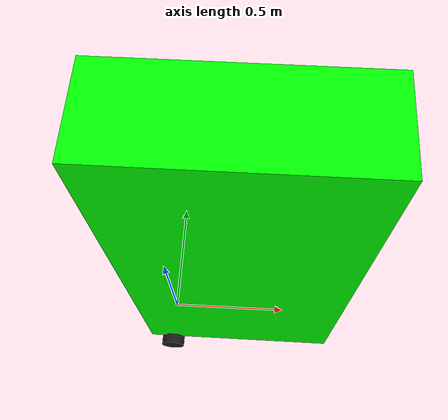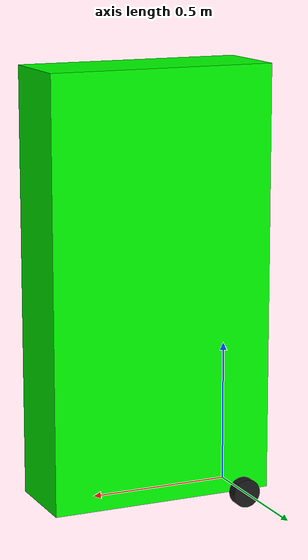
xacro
<?xml version="1.0"?>
<robot name="goal_marker" xmlns:xacro="http://www.ros.org/wiki/xacro">

  <!-- inertias -->
  <xacro:include filename="inertial_macros.xacro"/>

  <!-- NOTE: do NOT declare pkg_uri here; it is passed in from launch via xacro.process_file(mappings=...) -->

  <!-- Root -->
  <link name="base_link"/>

  <!-- Chassis -->
  <link name="chassis">
    <visual name="chassis_visual">
      <origin xyz="0.4 0 0.75"/>
      <geometry><box size="0.8 0.3 1.5"/></geometry>
      <!-- simple fallback color; Gazebo script applies actual texture -->
      <material name="fallback_green"><color rgba="0 1 0 1"/></material>
    </visual>

    <collision>
      <origin xyz="0.4 0 0.75"/>
      <geometry><box size="0.8 0.3 1.5"/></geometry>
    </collision>

    <xacro:inertial_box mass="0.5" x="0.8" y="0.3" z="1.5">
      <origin xyz="0.4 0 0.75" rpy="0 0 0"/>
    </xacro:inertial_box>
  </link>

  <!-- Wheels -->
  <link name="left_wheel">
    <visual>
      <geometry><cylinder length="0.04" radius="0.05"/></geometry>
      <material name="black_left"><color rgba="0.1 0.1 0.1 1"/></material>
    </visual>
    <collision><geometry><cylinder length="0.04" radius="0.05"/></geometry></collision>
    <xacro:inertial_cylinder mass="0.1" length="0.04" radius="0.05">
      <origin xyz="0 0 0" rpy="0 0 0"/>
    </xacro:inertial_cylinder>
  </link>

  <link name="right_wheel">
    <visual>
      <geometry><cylinder length="0.04" radius="0.05"/></geometry>
      <material name="black_right"><color rgba="0.1 0.1 0.1 1"/></material>
    </visual>
    <collision><geometry><cylinder length="0.04" radius="0.05"/></geometry></collision>
    <xacro:inertial_cylinder mass="0.1" length="0.04" radius="0.05">
      <origin xyz="0 0 0" rpy="0 0 0"/>
    </xacro:inertial_cylinder>
  </link>

  <link name="front_caster">
    <visual><geometry><sphere radius="0.05"/></geometry></visual>
    <collision><geometry><sphere radius="0.05"/></geometry></collision>
    <xacro:inertial_sphere mass="0.1" radius="0.05">
      <origin xyz="0 0 0" rpy="0 0 0"/>
    </xacro:inertial_sphere>
  </link>

  <!-- Joints -->
  <joint name="chassis_joint" type="fixed">
    <parent link="base_link"/>
    <child link="chassis"/>
    <origin xyz="-0.1 0 0"/>
  </joint>

  <joint name="left_wheel_joint" type="continuous">
    <parent link="base_link"/>
    <child link="left_wheel"/>
    <origin xyz="0 0.175 0" rpy="-1.5708 0 0"/>
    <axis xyz="0 0 1"/>
  </joint>

  <joint name="right_wheel_joint" type="continuous">
    <parent link="base_link"/>
    <child link="right_wheel"/>
    <origin xyz="0 -0.175 0" rpy="1.5708 0 0"/>
    <axis xyz="0 0 -1"/>
  </joint>

  <joint name="front_caster_joint" type="fixed">
    <parent link="chassis"/>
    <child link="front_caster"/>
    <origin xyz="0.64 0 0"/>
  </joint>

  <!-- Gazebo scripted material on links (use file:// URI passed from launch; safe with spaces) -->
  <gazebo reference="chassis">
    <material>
      <pbr>
        <metal>
          <albedo_map>package://goal_marker_description/models/goal_marker/materials/textures/pattern.png</albedo_map>
          <metalness>0.1</metalness>
          <roughness>0.5</roughness>
        </metal>
      </pbr>
    </material>
  </gazebo>

  <gazebo reference="base_link">
    <material>
      <pbr>
        <metal>
          <albedo_map>package://goal_marker_description/models/goal_marker/materials/textures/pattern.png</albedo_map>
          <metalness>0.1</metalness>
          <roughness>0.5</roughness>
        </metal>
      </pbr>
    </material>
  </gazebo>

  <!-- Other Gazebo materials -->
  <gazebo reference="left_wheel"><material>Gazebo/Grey</material></gazebo>
  <gazebo reference="right_wheel"><material>Gazebo/Grey</material></gazebo>
  <gazebo reference="front_caster"><material>Gazebo/Black</material></gazebo>

  <!-- Plugin -->
  <gazebo>
    <plugin name="goal_diff_drive" filename="libgazebo_ros_diff_drive.so">
      <ros>
        <namespace>/goal_marker</namespace>
        <remapping>cmd_vel:=/goal_marker/cmd_vel</remapping>
        <remapping>odom:=/goal_marker/odom</remapping>
      </ros>
      <left_joint>left_wheel_joint</left_joint>
      <right_joint>right_wheel_joint</right_joint>
      <wheel_separation>0.35</wheel_separation>
      <wheel_diameter>0.1</wheel_diameter>
      <max_wheel_torque>20</max_wheel_torque>
      <max_wheel_acceleration>5.0</max_wheel_acceleration>
      <publish_odom>true</publish_odom>
      <publish_wheel_tf>false</publish_wheel_tf>
      <publish_odom_tf>false</publish_odom_tf>
      <odometry_frame>goal_odom</odometry_frame>
      <robot_base_frame>chassis</robot_base_frame>
    </plugin>
  </gazebo>

</robot>

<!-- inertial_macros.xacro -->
<robot xmlns:xacro="http://www.ros.org/wiki/xacro" >

    <!-- Specify some standard inertial calculations https://en.wikipedia.org/wiki/List_of_moments_of_inertia -->
    <!-- These make use of xacro's mathematical functionality -->

    <xacro:macro name="inertial_sphere" params="mass radius *origin">
        <inertial>
            <xacro:insert_block name="origin"/>
            <mass value="${mass}" />
            <inertia ixx="${(2/5) * mass * (radius*radius)}" ixy="0.0" ixz="0.0"
                    iyy="${(2/5) * mass * (radius*radius)}" iyz="0.0"
                    izz="${(2/5) * mass * (radius*radius)}" />
        </inertial>
    </xacro:macro>

    <xacro:macro name="inertial_box" params="mass x y z *origin">
        <inertial>
            <xacro:insert_block name="origin"/>
            <mass value="${mass}" />
            <inertia ixx="${(1/12) * mass * (y*y+z*z)}" ixy="0.0" ixz="0.0"
                    iyy="${(1/12) * mass * (x*x+z*z)}" iyz="0.0"
                    izz="${(1/12) * mass * (x*x+y*y)}" />
        </inertial>
    </xacro:macro>

    <xacro:macro name="inertial_cylinder" params="mass length radius *origin">
        <inertial>
            <xacro:insert_block name="origin"/>
            <mass value="${mass}" />
            <inertia
                ixx="${(1/12) * mass * (3*radius*radius + length*length)}"
                ixy="0.0"
                ixz="0.0"
                iyy="${(1/2) * mass * (radius*radius)}"
                iyz="0.0"
                izz="${(1/12) * mass * (3*radius*radius + length*length)}" />
        </inertial>
    </xacro:macro>
</robot>
